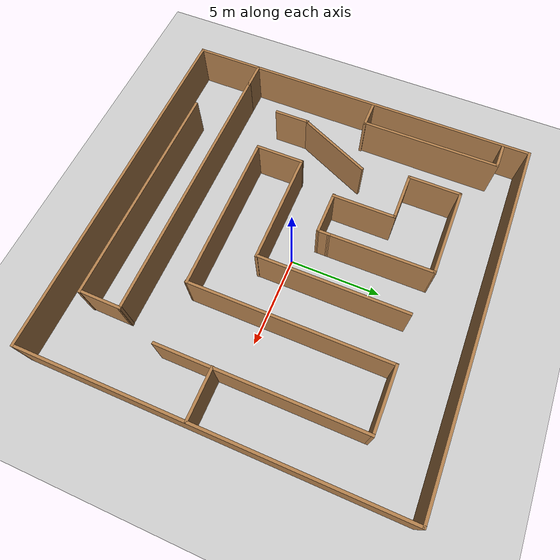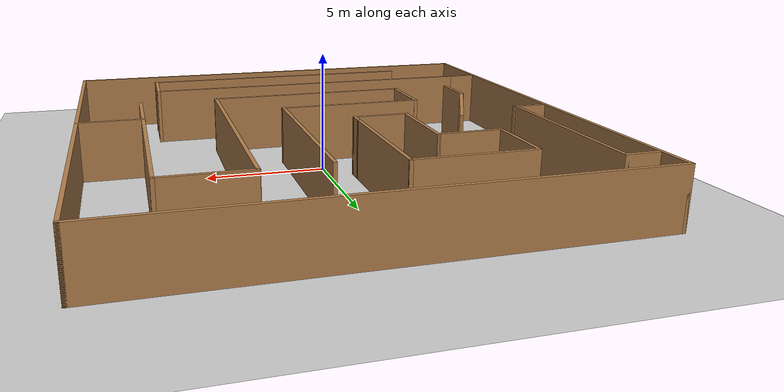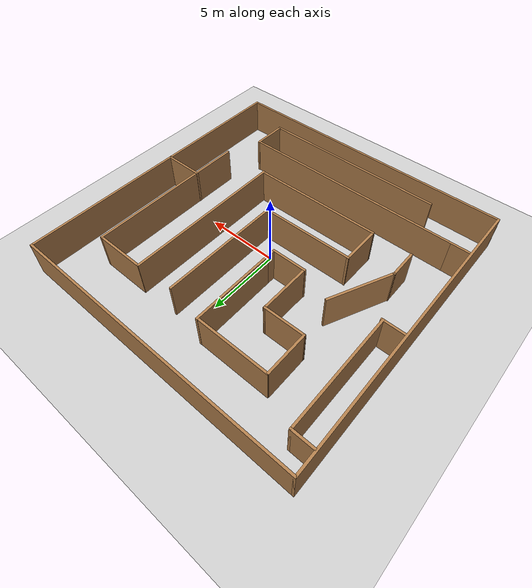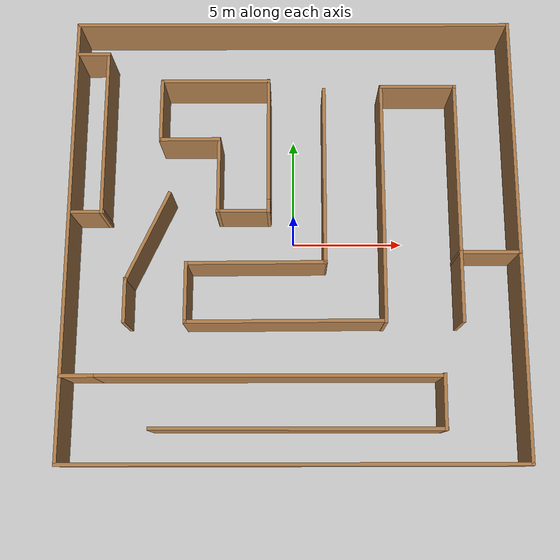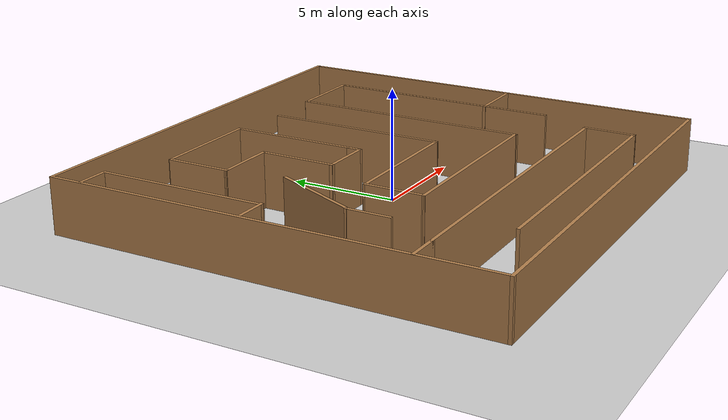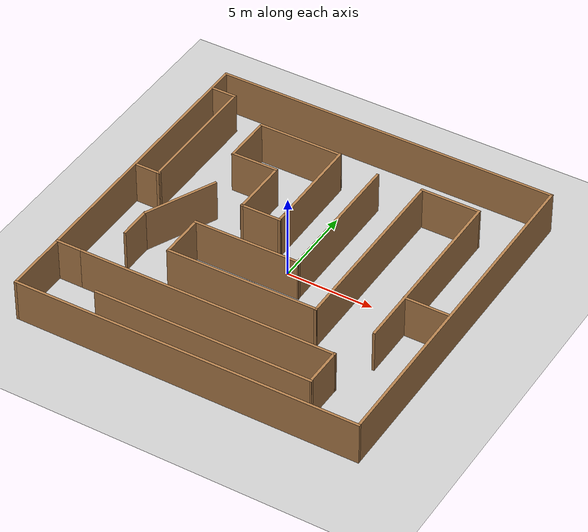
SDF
<sdf version="1.6">
 <world name="default">
  <light name="sun" type="directional">
   <pose>0 0 10 0 -0 0</pose>
   <diffuse>0.8 0.8 0.8 1</diffuse>
   <specular>0.2 0.2 0.2 1</specular>
   <attenuation>
    <range>1000</range>
    <constant>0.9</constant>
    <linear>0.01</linear>
    <quadratic>0.001</quadratic>
   </attenuation>
   <direction>-0.5 0.1 -0.9</direction>
  </light>
  <model name="ground_plane">
   <static>1</static>
   <link name="link">
    <collision name="collision">
     <geometry><plane><normal>0 0 1</normal><size>100 100</size></plane></geometry>
     <surface>
      <contact><collide_bitmask>65535</collide_bitmask></contact>
      <friction><ode><mu>100</mu><mu2>50</mu2></ode></friction>
     </surface>
    </collision>
    <visual name="visual">
     <cast_shadows>0</cast_shadows>
     <geometry><plane><normal>0 0 1</normal><size>100 100</size></plane></geometry>
     <material>
      <script><uri>file://media/materials/scripts/gazebo.material</uri><name>Gazebo/Grey</name></script>
     </material>
    </visual>
   </link>
  </model>
  <gravity>0 0 -9.8</gravity>
  <magnetic_field>6e-06 2.3e-05 -4.2e-05</magnetic_field>
  <atmosphere type="adiabatic"/>
  <physics name="default_physics" default="0" type="ode">
   <max_step_size>0.001</max_step_size>
   <real_time_factor>1</real_time_factor>
   <real_time_update_rate>1000</real_time_update_rate>
  </physics>
  <scene><ambient>0.4 0.4 0.4 1</ambient><background>0.7 0.7 0.7 1</background><shadows>1</shadows></scene>
  <audio><device>default</device></audio>
  <spherical_coordinates>
   <surface_model>EARTH_WGS84</surface_model>
   <latitude_deg>0</latitude_deg>
   <longitude_deg>0</longitude_deg>
   <elevation>0</elevation>
   <heading_deg>0</heading_deg>
  </spherical_coordinates>
  <model name="surroundings">
   <link name="Wall_0">
    <collision name="Wall_0_Collision">
     <geometry><box><size>20.15 0.15 2.5</size></box></geometry>
     <pose>0 0 1.25 0 -0 0</pose>
    </collision>
    <visual name="Wall_0_Visual">
     <pose>0 0 1.25 0 -0 0</pose>
     <geometry><box><size>20.15 0.15 2.5</size></box></geometry>
     <material>
      <script><uri>file://media/materials/scripts/gazebo.material</uri><name>Gazebo/Wood</name></script>
      <ambient>1 1 1 1</ambient>
     </material>
     <meta><layer>0</layer></meta>
    </visual>
    <pose>10 0 0 0 -0 -1.5708</pose>
   </link>
   <link name="Wall_1">
    <collision name="Wall_1_Collision">
     <geometry><box><size>20.15 0.15 2.5</size></box></geometry>
     <pose>0 0 1.25 0 -0 0</pose>
    </collision>
    <visual name="Wall_1_Visual">
     <pose>0 0 1.25 0 -0 0</pose>
     <geometry><box><size>20.15 0.15 2.5</size></box></geometry>
     <material>
      <script><uri>file://media/materials/scripts/gazebo.material</uri><name>Gazebo/Wood</name></script>
      <ambient>1 1 1 1</ambient>
     </material>
     <meta><layer>0</layer></meta>
    </visual>
    <pose>0 -10 0 0 -0 3.14159</pose>
   </link>
   <link name="Wall_2">
    <collision name="Wall_2_Collision">
     <geometry><box><size>20.15 0.15 2.5</size></box></geometry>
     <pose>0 0 1.25 0 -0 0</pose>
    </collision>
    <visual name="Wall_2_Visual">
     <pose>0 0 1.25 0 -0 0</pose>
     <geometry><box><size>20.15 0.15 2.5</size></box></geometry>
     <material>
      <script><uri>file://media/materials/scripts/gazebo.material</uri><name>Gazebo/Wood</name></script>
      <ambient>1 1 1 1</ambient>
     </material>
     <meta><layer>0</layer></meta>
    </visual>
    <pose>-10 0 0 0 -0 1.5708</pose>
   </link>
   <link name="Wall_3">
    <collision name="Wall_3_Collision">
     <geometry><box><size>20.15 0.15 2.5</size></box></geometry>
     <pose>0 0 1.25 0 -0 0</pose>
    </collision>
    <visual name="Wall_3_Visual">
     <pose>0 0 1.25 0 -0 0</pose>
     <geometry><box><size>20.15 0.15 2.5</size></box></geometry>
     <material>
      <script><uri>file://media/materials/scripts/gazebo.material</uri><name>Gazebo/Wood</name></script>
      <ambient>1 1 1 1</ambient>
     </material>
     <meta><layer>0</layer></meta>
    </visual>
    <pose>0 10 0 0 -0 0</pose>
   </link>
   <static>1</static>
  </model>
  <model name="text">
   <link name="Wall_122">
    <collision name="Wall_122_Collision">
     <geometry><box><size>2.91914 0.15 2.5</size></box></geometry>
     <pose>0 0 1.25 0 -0 0</pose>
    </collision>
    <visual name="Wall_122_Visual">
     <pose>0 0 1.25 0 -0 0</pose>
     <geometry><box><size>2.91914 0.15 2.5</size></box></geometry>
     <material>
      <script><uri>file://media/materials/scripts/gazebo.material</uri><name>Gazebo/Wood</name></script>
      <ambient>1 1 1 1</ambient>
     </material>
     <meta><layer>0</layer></meta>
    </visual>
    <pose>-6.01796 5.75428 0 0 -0 -1.5708</pose>
   </link>
   <link name="Wall_124">
    <collision name="Wall_124_Collision">
     <geometry><box><size>5.76529 0.15 2.5</size></box></geometry>
     <pose>0 0 1.25 0 -0 0</pose>
    </collision>
    <visual name="Wall_124_Visual">
     <pose>0 0 1.25 0 -0 0</pose>
     <geometry><box><size>5.76529 0.15 2.5</size></box></geometry>
     <material>
      <script><uri>file://media/materials/scripts/gazebo.material</uri><name>Gazebo/Wood</name></script>
      <ambient>1 1 1 1</ambient>
     </material>
     <meta><layer>0</layer></meta>
    </visual>
    <pose>-1.12773 4.39352 0 0 -0 1.57557</pose>
   </link>
   <link name="Wall_125">
    <collision name="Wall_125_Collision">
     <geometry><box><size>5 0.15 2.5</size></box></geometry>
     <pose>0 0 1.25 0 -0 0</pose>
    </collision>
    <visual name="Wall_125_Visual">
     <pose>0 0 1.25 0 -0 0</pose>
     <geometry><box><size>5 0.15 2.5</size></box></geometry>
     <material>
      <script><uri>file://media/materials/scripts/gazebo.material</uri><name>Gazebo/Wood</name></script>
      <ambient>1 1 1 1</ambient>
     </material>
     <meta><layer>0</layer></meta>
    </visual>
    <pose>-3.56614 7.18772 0 0 -0 3.14159</pose>
   </link>
   <link name="Wall_127">
    <collision name="Wall_127_Collision">
     <geometry><box><size>8.25 0.15 2.5</size></box></geometry>
     <pose>0 0 1.25 0 -0 0</pose>
    </collision>
    <visual name="Wall_127_Visual">
     <pose>0 0 1.25 0 -0 0</pose>
     <geometry><box><size>8.25 0.15 2.5</size></box></geometry>
     <material>
      <script><uri>file://media/materials/scripts/gazebo.material</uri><name>Gazebo/Wood</name></script>
      <ambient>1 1 1 1</ambient>
     </material>
     <meta><layer>0</layer></meta>
    </visual>
    <pose>1.39608 2.6985 0 0 -0 -1.5708</pose>
   </link>
   <link name="Wall_128">
    <collision name="Wall_128_Collision">
     <geometry><box><size>6.29579 0.15 2.5</size></box></geometry>
     <pose>0 0 1.25 0 -0 0</pose>
    </collision>
    <visual name="Wall_128_Visual">
     <pose>0 0 1.25 0 -0 0</pose>
     <geometry><box><size>6.29579 0.15 2.5</size></box></geometry>
     <material>
      <script><uri>file://media/materials/scripts/gazebo.material</uri><name>Gazebo/Wood</name></script>
      <ambient>0.760784 0.662745 0.627451 1</ambient>
     </material>
     <meta><layer>0</layer></meta>
    </visual>
    <pose>-1.65637 -1.36899 0 0 -0 -3.1359</pose>
   </link>
   <link name="Wall_129">
    <collision name="Wall_129_Collision">
     <geometry><box><size>2.75 0.15 2.5</size></box></geometry>
     <pose>0 0 1.25 0 -0 0</pose>
    </collision>
    <visual name="Wall_129_Visual">
     <pose>0 0 1.25 0 -0 0</pose>
     <geometry><box><size>2.75 0.15 2.5</size></box></geometry>
     <material>
      <script><uri>file://media/materials/scripts/gazebo.material</uri><name>Gazebo/Wood</name></script>
      <ambient>0.760784 0.662745 0.627451 1</ambient>
     </material>
     <meta><layer>0</layer></meta>
    </visual>
    <pose>-4.72922 -2.67482 0 0 -0 -1.5708</pose>
   </link>
   <link name="Wall_131">
    <collision name="Wall_131_Collision">
     <geometry><box><size>11 0.15 2.5</size></box></geometry>
     <pose>0 0 1.25 0 -0 0</pose>
    </collision>
    <visual name="Wall_131_Visual">
     <pose>0 0 1.25 0 -0 0</pose>
     <geometry><box><size>11 0.15 2.5</size></box></geometry>
     <material>
      <script><uri>file://media/materials/scripts/gazebo.material</uri><name>Gazebo/Wood</name></script>
      <ambient>1 1 1 1</ambient>
     </material>
     <meta><layer>0</layer></meta>
    </visual>
    <pose>7.38402 1.4735 0 0 -0 1.5708</pose>
   </link>
   <link name="Wall_137">
    <collision name="Wall_137_Collision">
     <geometry><box><size>15.235 0.15 2.5</size></box></geometry>
     <pose>0 0 1.25 0 -0 0</pose>
    </collision>
    <visual name="Wall_137_Visual">
     <pose>0 0 1.25 0 -0 0</pose>
     <geometry><box><size>15.235 0.15 2.5</size></box></geometry>
     <material>
      <script><uri>file://media/materials/scripts/gazebo.material</uri><name>Gazebo/Wood</name></script>
      <ambient>1 1 1 1</ambient>
     </material>
     <meta><layer>0</layer></meta>
    </visual>
    <pose>-1.077 -6.30737 0 0 -0 0</pose>
   </link>
   <link name="Wall_138">
    <collision name="Wall_138_Collision">
     <geometry><box><size>2.41417 0.15 2.5</size></box></geometry>
     <pose>0 0 1.25 0 -0 0</pose>
    </collision>
    <visual name="Wall_138_Visual">
     <pose>0 0 1.25 0 -0 0</pose>
     <geometry><box><size>2.41417 0.15 2.5</size></box></geometry>
     <material>
      <script><uri>file://media/materials/scripts/gazebo.material</uri><name>Gazebo/Wood</name></script>
      <ambient>1 1 1 1</ambient>
     </material>
     <meta><layer>0</layer></meta>
    </visual>
    <pose>6.45377 -7.416 0 0 -0 -1.58115</pose>
   </link>
   <link name="Wall_139">
    <collision name="Wall_139_Collision">
     <geometry><box><size>12.735 0.15 2.5</size></box></geometry>
     <pose>0 0 1.25 0 -0 0</pose>
    </collision>
    <visual name="Wall_139_Visual">
     <pose>0 0 1.25 0 -0 0</pose>
     <geometry><box><size>12.735 0.15 2.5</size></box></geometry>
     <material>
      <script><uri>file://media/materials/scripts/gazebo.material</uri><name>Gazebo/Wood</name></script>
      <ambient>1 1 1 1</ambient>
     </material>
     <meta><layer>0</layer></meta>
    </visual>
    <pose>0.172997 -8.53636 0 0 -0 3.13973</pose>
   </link>
   <link name="Wall_141">
    <collision name="Wall_141_Collision">
     <geometry><box><size>2.75 0.15 2.5</size></box></geometry>
     <pose>0 0 1.25 0 -0 0</pose>
    </collision>
    <visual name="Wall_141_Visual">
     <pose>0 0 1.25 0 -0 0</pose>
     <geometry><box><size>2.75 0.15 2.5</size></box></geometry>
     <material>
      <script><uri>file://media/materials/scripts/gazebo.material</uri><name>Gazebo/Wood</name></script>
      <ambient>1 1 1 1</ambient>
     </material>
     <meta><layer>0</layer></meta>
    </visual>
    <pose>8.66951 -0.912212 0 0 -0 0</pose>
   </link>
   <link name="Wall_143">
    <collision name="Wall_143_Collision">
     <geometry><box><size>11 0.15 2.5</size></box></geometry>
     <pose>0 0 1.25 0 -0 0</pose>
    </collision>
    <visual name="Wall_143_Visual">
     <pose>0 0 1.25 0 -0 0</pose>
     <geometry><box><size>11 0.15 2.5</size></box></geometry>
     <material>
      <script><uri>file://media/materials/scripts/gazebo.material</uri><name>Gazebo/Wood</name></script>
      <ambient>1 1 1 1</ambient>
     </material>
     <meta><layer>0</layer></meta>
    </visual>
    <pose>4.01443 1.4583 0 0 -0 -1.5708</pose>
   </link>
   <link name="Wall_145">
    <collision name="Wall_145_Collision">
     <geometry><box><size>3.5 0.15 2.5</size></box></geometry>
     <pose>0 0 1.25 0 -0 0</pose>
    </collision>
    <visual name="Wall_145_Visual">
     <pose>0 0 1.25 0 -0 0</pose>
     <geometry><box><size>3.5 0.15 2.5</size></box></geometry>
     <material>
      <script><uri>file://media/materials/scripts/gazebo.material</uri><name>Gazebo/Wood</name></script>
      <ambient>1 1 1 1</ambient>
     </material>
     <meta><layer>0</layer></meta>
    </visual>
    <pose>5.70902 6.8985 0 0 -0 3.14159</pose>
   </link>
   <link name="Wall_148">
    <collision name="Wall_148_Collision">
     <geometry><box><size>8.89365 0.15 2.5</size></box></geometry>
     <pose>0 0 1.25 0 -0 0</pose>
    </collision>
    <visual name="Wall_148_Visual">
     <pose>0 0 1.25 0 -0 0</pose>
     <geometry><box><size>8.89365 0.15 2.5</size></box></geometry>
     <material>
      <script><uri>file://media/materials/scripts/gazebo.material</uri><name>Gazebo/Wood</name></script>
      <ambient>1 1 1 1</ambient>
     </material>
     <meta><layer>0</layer></meta>
    </visual>
    <pose>-0.357397 -3.96311 0 0 -0 -3.13625</pose>
   </link>
   <link name="Wall_150">
    <collision name="Wall_150_Collision">
     <geometry><box><size>2.78031 0.15 2.5</size></box></geometry>
     <pose>0 0 1.25 0 -0 0</pose>
    </collision>
    <visual name="Wall_150_Visual">
     <pose>0 0 1.25 0 -0 0</pose>
     <geometry><box><size>2.78031 0.15 2.5</size></box></geometry>
     <material>
      <script><uri>file://media/materials/scripts/gazebo.material</uri><name>Gazebo/Wood</name></script>
      <ambient>1 1 1 1</ambient>
     </material>
     <meta><layer>0</layer></meta>
    </visual>
    <pose>-4.70285 4.35952 0 0 -0 0.007753</pose>
   </link>
   <link name="Wall_151">
    <collision name="Wall_151_Collision">
     <geometry><box><size>3.53368 0.15 2.5</size></box></geometry>
     <pose>0 0 1.25 0 -0 0</pose>
    </collision>
    <visual name="Wall_151_Visual">
     <pose>0 0 1.25 0 -0 0</pose>
     <geometry><box><size>3.53368 0.15 2.5</size></box></geometry>
     <material>
      <script><uri>file://media/materials/scripts/gazebo.material</uri><name>Gazebo/Wood</name></script>
      <ambient>1 1 1 1</ambient>
     </material>
     <meta><layer>0</layer></meta>
    </visual>
    <pose>-3.36742 2.67787 0 0 -0 -1.57084</pose>
   </link>
   <link name="Wall_152">
    <collision name="Wall_152_Collision">
     <geometry><box><size>2.42377 0.15 2.5</size></box></geometry>
     <pose>0 0 1.25 0 -0 0</pose>
    </collision>
    <visual name="Wall_152_Visual">
     <pose>0 0 1.25 0 -0 0</pose>
     <geometry><box><size>2.42377 0.15 2.5</size></box></geometry>
     <material>
      <script><uri>file://media/materials/scripts/gazebo.material</uri><name>Gazebo/Wood</name></script>
      <ambient>1 1 1 1</ambient>
     </material>
     <meta><layer>0</layer></meta>
    </visual>
    <pose>-2.25101 0.986034 0 0 -0 0</pose>
   </link>
   <link name="Wall_153">
    <collision name="Wall_153_Collision">
     <geometry><box><size>0.75 0.15 2.5</size></box></geometry>
     <pose>0 0 1.25 0 -0 0</pose>
    </collision>
    <visual name="Wall_153_Visual">
     <pose>0 0 1.25 0 -0 0</pose>
     <geometry><box><size>0.75 0.15 2.5</size></box></geometry>
     <material>
      <script><uri>file://media/materials/scripts/gazebo.material</uri><name>Gazebo/Wood</name></script>
      <ambient>1 1 1 1</ambient>
     </material>
     <meta><layer>0</layer></meta>
    </visual>
    <pose>-1.11422 1.28597 0 0 -0 1.57113</pose>
   </link>
   <link name="Wall_155">
    <collision name="Wall_155_Collision">
     <geometry><box><size>1.5 0.15 2.5</size></box></geometry>
     <pose>0 0 1.25 0 -0 0</pose>
    </collision>
    <visual name="Wall_155_Visual">
     <pose>0 0 1.25 0 -0 0</pose>
     <geometry><box><size>1.5 0.15 2.5</size></box></geometry>
     <material>
      <script><uri>file://media/materials/scripts/gazebo.material</uri><name>Gazebo/Wood</name></script>
      <ambient>1 1 1 1</ambient>
     </material>
     <meta><layer>0</layer></meta>
    </visual>
    <pose>-9.17262 0.949214 0 0 -0 3.14159</pose>
   </link>
   <link name="Wall_157">
    <collision name="Wall_157_Collision">
     <geometry><box><size>1.5 0.15 2.5</size></box></geometry>
     <pose>0 0 1.25 0 -0 0</pose>
    </collision>
    <visual name="Wall_157_Visual">
     <pose>0 0 1.25 0 -0 0</pose>
     <geometry><box><size>1.5 0.15 2.5</size></box></geometry>
     <material>
      <script><uri>file://media/materials/scripts/gazebo.material</uri><name>Gazebo/Wood</name></script>
      <ambient>1 1 1 1</ambient>
     </material>
     <meta><layer>0</layer></meta>
    </visual>
    <pose>-9.29451 -6.30737 0 0 -0 3.14159</pose>
   </link>
   <link name="Wall_159">
    <collision name="Wall_159_Collision">
     <geometry><box><size>1.5 0.15 2.5</size></box></geometry>
     <pose>0 0 1.25 0 -0 0</pose>
    </collision>
    <visual name="Wall_159_Visual">
     <pose>0 0 1.25 0 -0 0</pose>
     <geometry><box><size>1.5 0.15 2.5</size></box></geometry>
     <material>
      <script><uri>file://media/materials/scripts/gazebo.material</uri><name>Gazebo/Wood</name></script>
      <ambient>1 1 1 1</ambient>
     </material>
     <meta><layer>0</layer></meta>
    </visual>
    <pose>-9.23402 8.54879 0 0 -0 0</pose>
   </link>
   <link name="Wall_160">
    <collision name="Wall_160_Collision">
     <geometry><box><size>7.75 0.15 2.5</size></box></geometry>
     <pose>0 0 1.25 0 -0 0</pose>
    </collision>
    <visual name="Wall_160_Visual">
     <pose>0 0 1.25 0 -0 0</pose>
     <geometry><box><size>7.75 0.15 2.5</size></box></geometry>
     <material>
      <script><uri>file://media/materials/scripts/gazebo.material</uri><name>Gazebo/Wood</name></script>
      <ambient>1 1 1 1</ambient>
     </material>
     <meta><layer>0</layer></meta>
    </visual>
    <pose>-8.55902 4.74879 0 0 -0 -1.5708</pose>
   </link>
   <link name="Wall_163">
    <collision name="Wall_163_Collision">
     <geometry><box><size>4.4541 0.15 2.5</size></box></geometry>
     <pose>0 0 1.25 0 -0 0</pose>
    </collision>
    <visual name="Wall_163_Visual">
     <pose>0 0 1.25 0 -0 0</pose>
     <geometry><box><size>4.4541 0.15 2.5</size></box></geometry>
     <material>
      <script><uri>file://media/materials/scripts/gazebo.material</uri><name>Gazebo/Wood</name></script>
      <ambient>1 1 1 1</ambient>
     </material>
     <meta><layer>0</layer></meta>
    </visual>
    <pose>-6.45496 -0.155541 0 0 -0 -2.00394</pose>
   </link>
   <link name="Wall_164">
    <collision name="Wall_164_Collision">
     <geometry><box><size>2 0.15 2.5</size></box></geometry>
     <pose>0 0 1.25 0 -0 0</pose>
    </collision>
    <visual name="Wall_164_Visual">
     <pose>0 0 1.25 0 -0 0</pose>
     <geometry><box><size>2 0.15 2.5</size></box></geometry>
     <material>
      <script><uri>file://media/materials/scripts/gazebo.material</uri><name>Gazebo/Wood</name></script>
      <ambient>1 1 1 1</ambient>
     </material>
     <meta><layer>0</layer></meta>
    </visual>
    <pose>-7.37365 -3.03385 0 0 -0 -1.5708</pose>
   </link>
   <static>1</static>
  </model>
  <plugin filename="libcollision_map_creator.so" name="collision_map_creator"/>
 </world>
</sdf>
